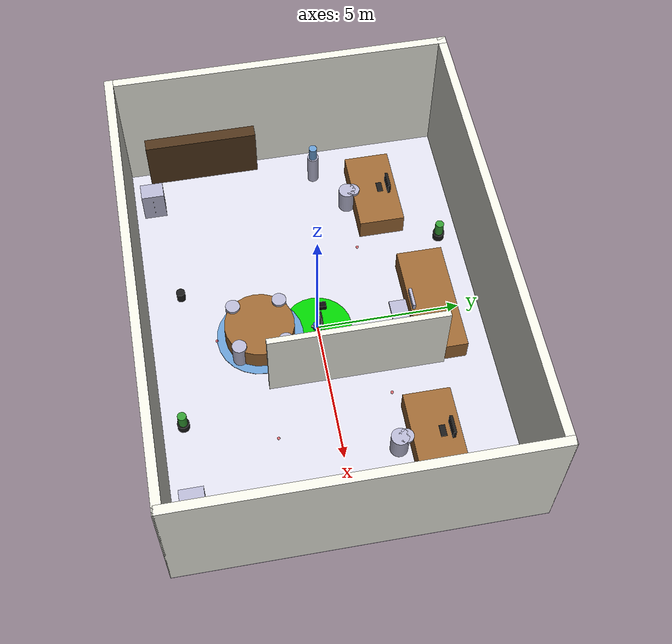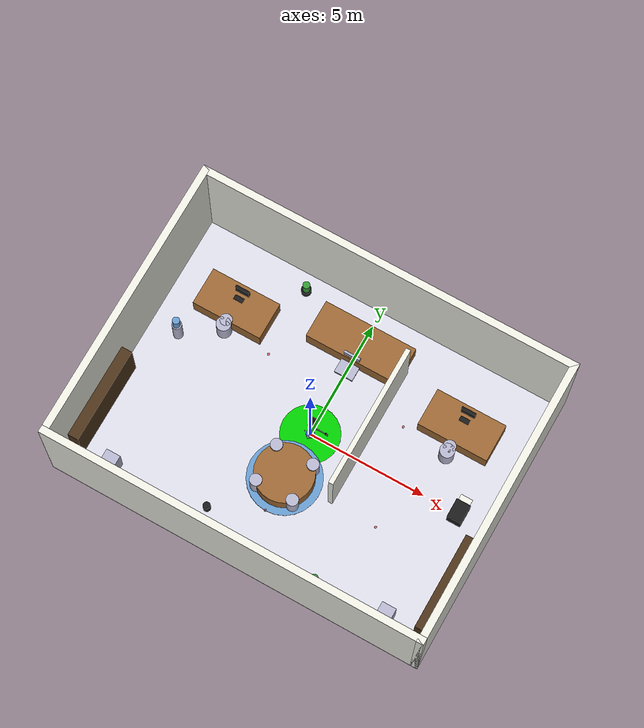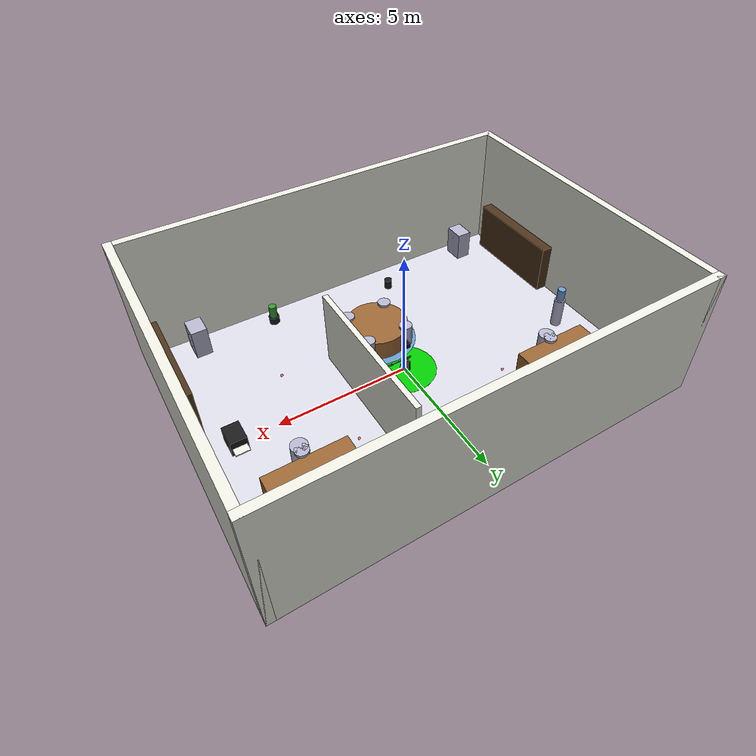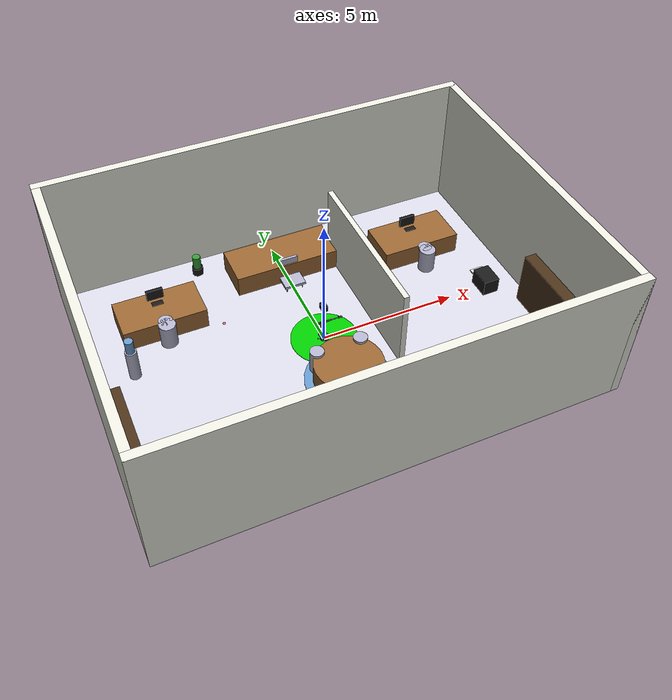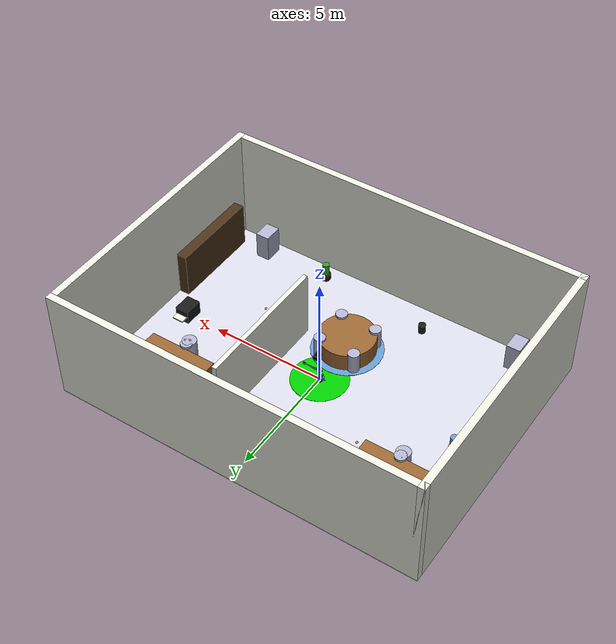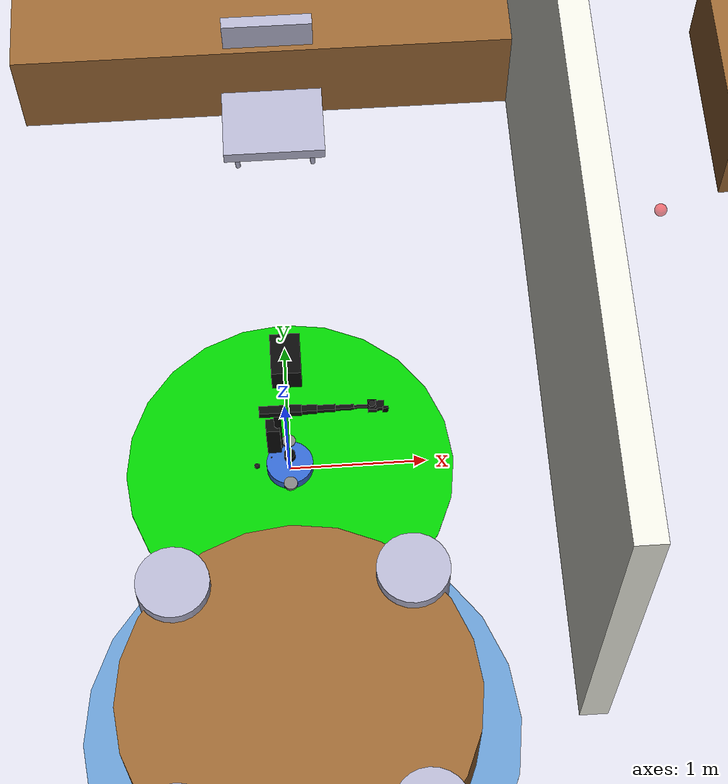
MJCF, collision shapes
<mujoco model="complex office with hybrid stretch robot">
  <!-- Include hybrid robot with simplified base -->
  <include file="stretch_hybrid_simple.xml"/>

  <statistic center="0 0 .75" extent="12" meansize="0.05"/>

  <visual>
    <headlight diffuse="0.6 0.6 0.6" ambient="0.3 0.3 0.3" specular="0 0 0"/>
    <rgba haze="0.15 0.25 0.35 1"/>
    <global azimuth="-120" elevation="-20"/>
  </visual>

  <asset>
    <!-- Office environment materials -->
    <material name="office_floor" rgba=".85 0.85 0.9 1" reflectance="0.2"/>
    <material name="office_wall" rgba=".92 0.92 0.88 1" reflectance="0.1"/>
    <material name="wood_desk" rgba=".6 0.4 0.2 1" reflectance="0.1"/>
    <material name="metal_chair" rgba=".7 0.7 0.8 1" reflectance="0.3"/>
    <material name="carpet" rgba=".4 0.6 0.8 0.5" reflectance="0.0"/>
    <material name="bookshelf" rgba=".3 0.2 0.1 1" reflectance="0.05"/>
    <material name="computer" rgba=".1 0.1 0.1 1" reflectance="0.05"/>
    <material name="plant" rgba=".2 0.6 0.2 1" reflectance="0.0"/>
    <texture type="skybox" builtin="gradient" rgb1="0.44 0.80 1.00" rgb2="1 1 1" width="512" height="3072"/>
  </asset>

  <worldbody>
    <!-- Enhanced lighting for office environment -->
    <light pos="0 0 4" dir="0 0 -1" directional="true" diffuse="0.8 0.8 0.8"/>
    <light pos="4 4 3" dir="-1 -1 -1" diffuse="0.4 0.4 0.5"/>
    <light pos="-4 -4 3" dir="1 1 -1" diffuse="0.4 0.4 0.5"/>
    <light pos="2 -3 2.5" dir="0 1 -1" diffuse="0.3 0.3 0.4"/>

    <!-- Large office floor -->
    <geom name="office_floor" size="8 6 0.05" type="plane" material="office_floor"/>

    <!-- Office walls creating realistic environment -->
    <geom name="wall_north" type="box" size="8 0.15 2.5" pos="0 5.85 2.5" material="office_wall"/>
    <geom name="wall_south" type="box" size="8 0.15 2.5" pos="0 -5.85 2.5" material="office_wall"/>
    <geom name="wall_east" type="box" size="0.15 6 2.5" pos="7.85 0 2.5" material="office_wall"/>
    <geom name="wall_west" type="box" size="0.15 6 2.5" pos="-7.85 0 2.5" material="office_wall"/>

    <!-- Room divider (creates realistic office layout) -->
    <geom name="divider_wall" type="box" size="0.1 3 1.5" pos="2 1 1.5" material="office_wall"/>

    <!-- Office furniture - strategically placed for navigation testing -->

    <!-- Reception area (front of office) -->
    <body name="reception_desk" pos="0 4 0.4">
      <geom type="box" size="2.0 0.8 0.4" material="wood_desk"/>
      <geom name="desk_leg1" type="cylinder" size="0.05 0.4" pos="1.5 0.5 -0.4" material="metal_chair"/>
      <geom name="desk_leg2" type="cylinder" size="0.05 0.4" pos="1.5 -0.5 -0.4" material="metal_chair"/>
      <geom name="desk_leg3" type="cylinder" size="0.05 0.4" pos="-1.5 0.5 -0.4" material="metal_chair"/>
      <geom name="desk_leg4" type="cylinder" size="0.05 0.4" pos="-1.5 -0.5 -0.4" material="metal_chair"/>
    </body>

    <body name="reception_chair" pos="0 3 0.25">
      <geom type="box" size="0.4 0.4 0.05" material="metal_chair"/>
      <geom name="chair_back" type="box" size="0.35 0.05 0.4" pos="0 0.3 0.4" material="metal_chair"/>
      <geom name="chair_leg1" type="cylinder" size="0.02 0.25" pos="0.3 0.3 -0.25" material="metal_chair"/>
      <geom name="chair_leg2" type="cylinder" size="0.02 0.25" pos="0.3 -0.3 -0.25" material="metal_chair"/>
      <geom name="chair_leg3" type="cylinder" size="0.02 0.25" pos="-0.3 0.3 -0.25" material="metal_chair"/>
      <geom name="chair_leg4" type="cylinder" size="0.02 0.25" pos="-0.3 -0.3 -0.25" material="metal_chair"/>
    </body>

    <!-- Work area 1 (left side) -->
    <body name="work_desk1" pos="-5 3 0.4">
      <geom type="box" size="1.5 0.8 0.4" material="wood_desk"/>
      <!-- Computer setup -->
      <geom name="monitor1" type="box" size="0.3 0.05 0.2" pos="0 0.5 0.6" material="computer"/>
      <geom name="keyboard1" type="box" size="0.2 0.1 0.01" pos="0 0.2 0.42" material="computer"/>
    </body>

    <body name="work_chair1" pos="-5 2 0.45">
      <geom type="cylinder" size="0.3 0.45" material="metal_chair"/>
      <geom name="chair1_back" type="cylinder" size="0.25 0.05" pos="0 0.2 0.4" material="metal_chair"/>
    </body>

    <!-- Work area 2 (right side) -->
    <body name="work_desk2" pos="5 3 0.4">
      <geom type="box" size="1.5 0.8 0.4" material="wood_desk"/>
      <!-- Computer setup -->
      <geom name="monitor2" type="box" size="0.3 0.05 0.2" pos="0 0.5 0.6" material="computer"/>
      <geom name="keyboard2" type="box" size="0.2 0.1 0.01" pos="0 0.2 0.42" material="computer"/>
    </body>

    <body name="work_chair2" pos="5 1.8 0.45">
      <geom type="cylinder" size="0.3 0.45" material="metal_chair"/>
      <geom name="chair2_back" type="cylinder" size="0.25 0.05" pos="0 0.2 0.4" material="metal_chair"/>
    </body>

    <!-- Meeting table (center-back) -->
    <body name="meeting_table" pos="0 -2 0.4">
      <geom type="cylinder" size="1.2 0.4" material="wood_desk"/>
      <geom name="table_base" type="cylinder" size="0.1 0.4" pos="0 0 -0.4" material="metal_chair"/>
    </body>

    <!-- Meeting chairs around table -->
    <body name="meeting_chair1" pos="0.8 -1.2 0.45">
      <geom type="cylinder" size="0.25 0.45" material="metal_chair"/>
    </body>
    <body name="meeting_chair2" pos="-0.8 -1.2 0.45">
      <geom type="cylinder" size="0.25 0.45" material="metal_chair"/>
    </body>
    <body name="meeting_chair3" pos="0.8 -2.8 0.45">
      <geom type="cylinder" size="0.25 0.45" material="metal_chair"/>
    </body>
    <body name="meeting_chair4" pos="-0.8 -2.8 0.45">
      <geom type="cylinder" size="0.25 0.45" material="metal_chair"/>
    </body>

    <!-- Bookshelves along walls -->
    <body name="bookshelf1" pos="-7.5 -3 1.0">
      <geom type="box" size="0.25 2.0 1.0" material="bookshelf"/>
      <!-- Books simulation -->
      <geom name="books1" type="box" size="0.2 1.8 0.05" pos="0 0 0.5" material="computer"/>
      <geom name="books2" type="box" size="0.2 1.8 0.05" pos="0 0 0.0" material="computer"/>
      <geom name="books3" type="box" size="0.2 1.8 0.05" pos="0 0 -0.5" material="computer"/>
    </body>

    <body name="bookshelf2" pos="7.5 -3 1.0">
      <geom type="box" size="0.25 2.0 1.0" material="bookshelf"/>
      <geom name="books4" type="box" size="0.2 1.8 0.05" pos="0 0 0.5" material="computer"/>
      <geom name="books5" type="box" size="0.2 1.8 0.05" pos="0 0 0.0" material="computer"/>
      <geom name="books6" type="box" size="0.2 1.8 0.05" pos="0 0 -0.5" material="computer"/>
    </body>

    <!-- Filing cabinets -->
    <body name="filing_cabinet1" pos="-6 -5 0.6">
      <geom type="box" size="0.3 0.4 0.6" material="metal_chair"/>
      <!-- Drawer handles -->
      <geom name="handle1" type="cylinder" size="0.01 0.05" pos="0.28 0 0.3" euler="0 1.57 0" material="computer"/>
      <geom name="handle2" type="cylinder" size="0.01 0.05" pos="0.28 0 0" euler="0 1.57 0" material="computer"/>
      <geom name="handle3" type="cylinder" size="0.01 0.05" pos="0.28 0 -0.3" euler="0 1.57 0" material="computer"/>
    </body>

    <body name="filing_cabinet2" pos="6 -5 0.6">
      <geom type="box" size="0.3 0.4 0.6" material="metal_chair"/>
      <geom name="handle4" type="cylinder" size="0.01 0.05" pos="0.28 0 0.3" euler="0 1.57 0" material="computer"/>
      <geom name="handle5" type="cylinder" size="0.01 0.05" pos="0.28 0 0" euler="0 1.57 0" material="computer"/>
      <geom name="handle6" type="cylinder" size="0.01 0.05" pos="0.28 0 -0.3" euler="0 1.57 0" material="computer"/>
    </body>

    <!-- Plants for realism -->
    <body name="plant1" pos="-3 5 0.4">
      <geom type="cylinder" size="0.15 0.4" material="plant"/>
      <geom name="pot1" type="cylinder" size="0.2 0.15" pos="0 0 -0.25" material="computer"/>
    </body>

    <body name="plant2" pos="3 -5 0.4">
      <geom type="cylinder" size="0.15 0.4" material="plant"/>
      <geom name="pot2" type="cylinder" size="0.2 0.15" pos="0 0 -0.25" material="computer"/>
    </body>

    <!-- Office equipment -->
    <body name="printer" pos="6.5 0 0.3">
      <geom type="box" size="0.3 0.4 0.3" material="computer"/>
      <geom name="printer_tray" type="box" size="0.25 0.35 0.02" pos="0 0.35 0" material="office_wall"/>
    </body>

    <!-- Water cooler -->
    <body name="water_cooler" pos="-6.5 1 0.6">
      <geom type="cylinder" size="0.2 0.6" material="metal_chair"/>
      <geom name="water_bottle" type="cylinder" size="0.15 0.3" pos="0 0 0.8" material="carpet"/>
    </body>

    <!-- Trash bins -->
    <body name="trash1" pos="1 4.5 0.2">
      <geom type="cylinder" size="0.15 0.2" material="computer"/>
    </body>
    <body name="trash2" pos="-2 -4.5 0.2">
      <geom type="cylinder" size="0.15 0.2" material="computer"/>
    </body>

    <!-- Area rug for visual reference -->
    <geom name="office_rug" type="cylinder" size="1.5 0.01" pos="0 -2 0.01" material="carpet"/>

    <!-- Robot starting area marker (clear navigation space) -->
    <body name="robot_start_zone" pos="0 0 0.01">
      <geom type="cylinder" size="1.2 0.005" rgba="0 0.8 0 0.3"/>
    </body>

    <!-- Navigation waypoints (invisible markers for testing) -->
    <site name="waypoint_1" pos="3 2 0.1" size="0.05" rgba="1 0 0 0.5"/>
    <site name="waypoint_2" pos="-3 2 0.1" size="0.05" rgba="1 0 0 0.5"/>
    <site name="waypoint_3" pos="0 -3.5 0.1" size="0.05" rgba="1 0 0 0.5"/>
    <site name="waypoint_4" pos="4 -2 0.1" size="0.05" rgba="1 0 0 0.5"/>
  </worldbody>
</mujoco>

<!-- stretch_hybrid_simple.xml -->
<mujoco model="stretch_hybrid_simple">
  <!-- Hybrid model: Simplified cylindrical base + Original upper components -->
  <compiler angle="radian" assetdir="/home/user/stretch_mujoco/stretch_mujoco/models/assets"/>

  <!-- Optimized physics settings for better performance -->
  <option timestep="0.015" gravity="0 0 -9.81" iterations="25" solver="PGS" integrator="implicitfast" impratio="15">
    <flag multiccd="enable"/>
  </option>
  <size njmax="3000" nconmax="3000" />

  <default>
    <default class="stretch">
      <geom mass="0" solref="0.01 1"/>
      <general biastype="affine"/>
      <default class="wheel">
        <joint axis="0 0 1" damping="0.1" frictionloss="35" armature="0.1" stiffness="0.01"/>
        <velocity gear="3" kv="20" ctrlrange="-6 6"/>
      </default>
      <default class="lift">
        <joint type="slide" axis="0 0 1" damping="35" stiffness="0.03" armature="0.01" range="0.0 1.1" frictionloss="1.5"/>
        <general ctrlrange="0.0 1.1" gainprm="400" biasprm="0 -200 -100" forcerange="-70 70"/>
      </default>
      <default class="telescope">
        <joint type="slide" axis="0 0 1" damping="50" stiffness="0.02" armature="0.01" range="0 0.13" frictionloss="1.5"/>
        <general ctrlrange="0 0.52" gainprm="150" biasprm="0 -100 -10" forcerange="-56 56"/>
      </default>
      <default class="head">
        <joint axis="0 0 1" damping="1"/>
        <position kp="10"/>
        <default class="head_pan">
          <joint range="-4.04 1.73"/>
          <position ctrlrange="-4.04 1.73"/>
        </default>
        <default class="head_tilt">
          <joint range="-1.53 0.79"/>
          <position ctrlrange="-1.53 0.79"/>
        </default>
      </default>
      <default class="wrist">
        <joint axis="0 0 1" damping="1"/>
        <position kp="10"/>
        <default class="wrist_yaw">
          <joint axis="0 0 -1" range="-1.39 4.42" armature="0.01" damping="7" frictionloss=".1"/>
          <position ctrlrange="-1.39 4.42" kp="20"/>
        </default>
        <default class="wrist_pitch">
          <joint axis="0 0 1" range="-1.57 0.56" armature="0.01" frictionloss=".1"/>
          <position ctrlrange="-1.57 0.56" kp="50"/>
        </default>
        <default class="wrist_roll">
          <joint axis="0 0 1" range="-3.14 3.14" armature="0.01" frictionloss=".1"/>
          <position ctrlrange="-3.14 3.14" kp="20"/>
        </default>
        <default class="finger_open">
          <joint axis="0 -1 0" range="-0.6 0.6" damping="0.0001" armature="0.01" frictionloss=".1"/>
          <position ctrlrange="-0.6 0.6" kp="4000" kv="124"/>
        </default>
        <default class="finger_slide">
          <joint type="slide" axis="0 0 1" range="-0.02 .04" armature="0.1" damping="0.0001"/>
          <position ctrlrange="-0.02 .04" kp="4000" kv="124"/>
        </default>
      </default>
      <default class="visual">
        <geom group="2" type="mesh" contype="0" conaffinity="0"/>
      </default>
      <default class="collision">
        <geom group="3" type="mesh"/>
        <default class="caster">
          <geom type="sphere" size=".02" pos="-0.24 0 .02" condim="1" priority="1"/>
        </default>
        <default class="rubber">
          <geom condim="6" friction="2 0.02 0.1" priority="1" solref="0.02 1" solimp="0.99 0.99 0.01" conaffinity="1"/>
        </default>
      </default>
    </default>
  </default>

  <asset>
    <!-- Materials for simplified base -->
    <material name="base_blue" rgba="0.2 0.4 0.8 1"/>
    <material name="base_gray" rgba="0.5 0.5 0.5 1"/>
    <material name="wheel_black" rgba="0.1 0.1 0.1 1"/>

    <!-- Original robot materials (subset needed) -->
    <material name="Generic_Black" rgba="0.036889 0.036889 0.036889 1"/>
    <material name="3D_Print_Black" rgba="0.114435 0.114435 0.114435 1"/>
    <material name="Pantone_Black_6_U" rgba="0.072272 0.076185 0.093059 1"/>
    <material name="Pure_Black" rgba="0 0 0 1"/>
    <material name="Gray_Lens" rgba="0.3 0.3 0.3 1" reflectance="0.3"/>
    <material name="Servo_Blue" rgba="0.0823 0.4392 0.7137 1"/>
    <material name="Stepper_Black" rgba="0.0823 0.0823 0.0823 1"/>

    <!-- Original robot meshes for upper components -->
    <mesh name="link_mast" file="link_mast.obj"/>
    <mesh name="link_lift_0" file="link_lift_0.obj"/>
    <mesh name="link_lift_8" file="link_lift_8.obj"/>
    <mesh name="link_lift_9" file="link_lift_9.obj"/>

    <!-- Head meshes -->
    <mesh name="link_head_0" file="link_head_0.obj"/>
    <mesh name="link_head_1" file="link_head_1.obj"/>
    <mesh name="link_head_2" file="link_head_2.obj"/>
    <mesh name="link_head_3" file="link_head_3.obj"/>
    <mesh name="link_head_4" file="link_head_4.obj"/>
    <mesh name="link_head_5" file="link_head_5.obj"/>
    <mesh name="link_head_6" file="link_head_6.obj"/>
    <mesh name="link_head_7" file="link_head_7.obj"/>
    <mesh name="link_head_8" file="link_head_8.obj"/>
    <mesh name="link_head_9" file="link_head_9.obj"/>
    <mesh name="link_head_10" file="link_head_10.obj"/>
    <mesh name="link_head_11" file="link_head_11.obj"/>

    <!-- Arm meshes -->
    <mesh name="link_arm_l0_0" file="link_arm_l0_0.obj"/>
    <mesh name="link_arm_l0_1" file="link_arm_l0_1.obj"/>
    <mesh name="link_arm_l0_2" file="link_arm_l0_2.obj"/>
    <mesh name="link_arm_l1_0" file="link_arm_l1_0.obj"/>
    <mesh name="link_arm_l1_1" file="link_arm_l1_1.obj"/>
    <mesh name="link_arm_l2_0" file="link_arm_l2_0.obj"/>
    <mesh name="link_arm_l2_1" file="link_arm_l2_1.obj"/>
    <mesh name="link_arm_l3_0" file="link_arm_l3_0.obj"/>
    <mesh name="link_arm_l3_1" file="link_arm_l3_1.obj"/>
    <mesh name="link_arm_l4_0" file="link_arm_l4_0.obj"/>
    <mesh name="link_arm_l4_1" file="link_arm_l4_1.obj"/>

    <!-- Wrist and gripper meshes -->
    <mesh name="link_wrist_yaw" file="link_wrist_yaw.obj"/>
    <mesh name="link_DW3_wrist_pitch" file="link_DW3_wrist_pitch.stl"/>
    <mesh name="link_DW3_wrist_roll" file="link_DW3_wrist_roll.stl"/>
    <mesh name="link_SG3_gripper_body" file="link_SG3_gripper_body.obj"/>
    <mesh name="link_gripper_0" file="link_gripper_0.obj"/>
    <mesh name="link_gripper_1" file="link_gripper_1.obj"/>

    <!-- Wheel meshes -->
    <mesh name="link_left_wheel_0" file="link_left_wheel_0.obj"/>
    <mesh name="link_left_wheel_1" file="link_left_wheel_1.obj"/>
    <mesh name="link_right_wheel_0" file="link_right_wheel_0.obj"/>
    <mesh name="link_right_wheel_1" file="link_right_wheel_1.obj"/>

    <!-- LiDAR mesh -->
    <mesh name="laser" file="laser.obj"/>
  </asset>

  <worldbody>
    <light name="spotlight" mode="targetbodycom" target="base_link" pos="0 -1 2"/>

    <!-- SIMPLIFIED MOBILE BASE - Single cylinder replacing all base meshes -->
    <body name="base_link" pos="0 0 0.051">
      <!-- Simplified base visual - single blue cylinder -->
      <geom name="base_cylinder_visual" type="cylinder" size="0.17 0.051"
            material="base_blue" group="2" mass="0"/>

      <!-- Simplified base collision - cylinder with realistic mass -->
      <geom name="base_cylinder_collision" type="cylinder" size="0.17 0.051"
            material="base_gray" group="3" mass="25.0"/>

      <!-- Caster sphere (keep original) -->
      <geom name="caster" class="caster" material="wheel_black"/>

      <!-- Base joints for mobility -->
      <joint name="base_x" type="slide" axis="1 0 0" damping="10" range="-100 100"/>
      <joint name="base_y" type="slide" axis="0 1 0" damping="10" range="-100 100"/>
      <joint name="base_theta" type="hinge" axis="0 0 1" damping="5" range="-6.28 6.28"/>

      <!-- WHEELS (Keep original specifications and meshes) -->
      <body name="link_left_wheel" pos="0 0.17035 0.0508">
        <joint name="joint_left_wheel" class="wheel"/>
        <geom name="link_left_wheel_0_visual" class="visual" mesh="link_left_wheel_0" material="wheel_black"/>
        <geom name="link_left_wheel_1_visual" class="visual" mesh="link_left_wheel_1" material="Generic_Black"/>
        <geom name="link_left_wheel_collision" class="rubber" type="cylinder" size="0.05 0.0125" mass="0.15"/>
      </body>

      <body name="link_right_wheel" pos="0 -0.17035 0.0508">
        <joint name="joint_right_wheel" class="wheel"/>
        <geom name="link_right_wheel_0_visual" class="visual" mesh="link_right_wheel_0" material="wheel_black"/>
        <geom name="link_right_wheel_1_visual" class="visual" mesh="link_right_wheel_1" material="Generic_Black"/>
        <geom name="link_right_wheel_collision" class="rubber" type="cylinder" size="0.05 0.0125" mass="0.15"/>
      </body>

      <!-- LIDAR (Keep exact original position and specs) -->
      <body name="laser" pos="0.004 0 0.1664" quat="0 0 0 1">
        <geom name="laser_visual" class="visual" mesh="laser" material="Pure_Black"/>
        <geom name="laser_collision" type="cylinder" size="0.04 0.03" material="Pure_Black" group="3" mass="0.2"/>
        <site name="base_lidar" pos="0 0 0" size="0.01"/>
      </body>

      <!-- IMU (Keep exact original position) -->
      <site name="base_imu" pos="-0.12838 0.0031592 0.1474" euler="-3.1416 0 1.5708"/>

      <!-- MAST (Keep original - connects base to upper robot) -->
      <body name="link_mast" pos="-0.067 0.135 0.0284">
        <geom name="link_mast_visual" class="visual" mesh="link_mast" material="Generic_Black"/>
        <geom name="link_mast_collision" type="cylinder" size="0.025 0.6" material="Generic_Black" group="3" mass="1.8285"/>

        <!-- LIFT SYSTEM (Keep all original components) -->
        <body name="link_lift" pos="-0.037385 -0.000001 0.17159">
          <joint name="joint_lift" class="lift"/>
          <geom name="link_lift_0_visual" class="visual" mesh="link_lift_0" material="Generic_Black"/>
          <geom name="link_lift_8_visual" class="visual" mesh="link_lift_8" material="Stepper_Black"/>
          <geom name="link_lift_9_visual" class="visual" mesh="link_lift_9" material="Generic_Black"/>
          <geom name="link_lift_collision" type="box" size="0.05 0.05 0.2" material="Generic_Black" group="3" mass="3.0"/>

          <!-- HEAD ASSEMBLY (Keep all original components) -->
          <body name="link_head_pan" pos="0.13395 -0.000005 1.1568">
            <joint name="joint_head_pan" class="head_pan"/>
            <geom name="head_pan_collision" type="cylinder" size="0.03 0.02" material="Generic_Black" group="3" mass="0.2"/>

            <body name="link_head_tilt" pos="0 0 0">
              <joint name="joint_head_tilt" class="head_tilt"/>
              <geom name="head_tilt_collision" type="box" size="0.05 0.05 0.02" material="Generic_Black" group="3" mass="0.15"/>

              <!-- Head visual components (keep original) -->
              <geom name="link_head_0_visual" class="visual" mesh="link_head_0" material="Generic_Black"/>
              <geom name="link_head_1_visual" class="visual" mesh="link_head_1" material="3D_Print_Black"/>
              <geom name="link_head_2_visual" class="visual" mesh="link_head_2" material="Pantone_Black_6_U"/>
              <geom name="link_head_3_visual" class="visual" mesh="link_head_3" material="3D_Print_Black"/>
              <geom name="link_head_4_visual" class="visual" mesh="link_head_4" material="Generic_Black"/>
              <geom name="link_head_5_visual" class="visual" mesh="link_head_5" material="Pure_Black"/>
              <geom name="link_head_6_visual" class="visual" mesh="link_head_6" material="Gray_Lens"/>
              <geom name="link_head_7_visual" class="visual" mesh="link_head_7" material="Pure_Black"/>
              <geom name="link_head_8_visual" class="visual" mesh="link_head_8" material="Generic_Black"/>
              <geom name="link_head_9_visual" class="visual" mesh="link_head_9" material="Pure_Black"/>
              <geom name="link_head_10_visual" class="visual" mesh="link_head_10" material="Generic_Black"/>
              <geom name="link_head_11_visual" class="visual" mesh="link_head_11" material="3D_Print_Black"/>

              <!-- Head collision -->
              <geom name="link_head_collision" type="box" size="0.1 0.15 0.1" material="Generic_Black" group="3" mass="0.833027"/>

              <!-- D435i Camera Assembly (Keep exact original position) -->
              <body name="realsense" pos="0.0406 0.0053 0.0307" euler="0 0 0">
                <geom name="d435i_housing" type="box" size="0.012 0.045 0.01" material="Pure_Black" group="2" mass="0"/>
                <camera name="d435i_camera_rgb" pos="0 0.015 0" euler="1.57 -1.57 0" fovy="42"/>
                <camera name="d435i_camera_depth" pos="0 0.015 0" euler="1.57 -1.57 0" fovy="42"/>
              </body>

              <!-- Navigation Camera (Keep exact original position) -->
              <body name="link_SE3_head_nav_cam" pos="0.04 -0.0412 -0.0246" euler="0 1.5707963 0">
                <body name="head_nav_cam" pos="0 0 0">
                  <geom name="nav_cam_housing" type="box" size="0.01 0.03 0.008" material="Pure_Black" group="2" mass="0"/>
                  <camera name="nav_camera_rgb" pos="0 0 0" euler="-3.1415926 0 -1.5707963" fovy="69"/>
                </body>
              </body>
            </body>
          </body>

          <!-- ARM SYSTEM (Keep all original telescoping components) -->
          <body name="link_arm_l4" pos="0.06478 0.000003 0.41821" gravcomp="1">
            <joint name="joint_arm_l4" class="telescope"/>
            <geom name="link_arm_l4_0_visual" class="visual" mesh="link_arm_l4_0" material="Generic_Black"/>
            <geom name="link_arm_l4_1_visual" class="visual" mesh="link_arm_l4_1" material="Servo_Blue"/>
            <geom name="link_arm_l4_collision" type="box" size="0.15 0.03 0.03" material="Generic_Black" group="3" mass="0.2"/>

            <body name="link_arm_l3" pos="0.13 0 0" gravcomp="1">
              <joint name="joint_arm_l3" class="telescope"/>
              <geom name="link_arm_l3_0_visual" class="visual" mesh="link_arm_l3_0" material="Generic_Black"/>
              <geom name="link_arm_l3_1_visual" class="visual" mesh="link_arm_l3_1" material="Servo_Blue"/>
              <geom name="link_arm_l3_collision" type="box" size="0.13 0.025 0.025" material="Generic_Black" group="3" mass="0.18"/>

              <body name="link_arm_l2" pos="0.13 0 0" gravcomp="1">
                <joint name="joint_arm_l2" class="telescope"/>
                <geom name="link_arm_l2_0_visual" class="visual" mesh="link_arm_l2_0" material="Generic_Black"/>
                <geom name="link_arm_l2_1_visual" class="visual" mesh="link_arm_l2_1" material="Servo_Blue"/>
                <geom name="link_arm_l2_collision" type="box" size="0.13 0.02 0.02" material="Generic_Black" group="3" mass="0.16"/>

                <body name="link_arm_l1" pos="0.13 0 0" gravcomp="1">
                  <joint name="joint_arm_l1" class="telescope"/>
                  <geom name="link_arm_l1_0_visual" class="visual" mesh="link_arm_l1_0" material="Generic_Black"/>
                  <geom name="link_arm_l1_1_visual" class="visual" mesh="link_arm_l1_1" material="Servo_Blue"/>
                  <geom name="link_arm_l1_collision" type="box" size="0.13 0.015 0.015" material="Generic_Black" group="3" mass="0.15"/>

                  <body name="link_arm_l0" pos="0.13 0 0" gravcomp="1">
                    <joint name="joint_arm_l0" class="telescope"/>
                    <geom name="link_arm_l0_0_visual" class="visual" mesh="link_arm_l0_0" material="Generic_Black"/>
                    <geom name="link_arm_l0_1_visual" class="visual" mesh="link_arm_l0_1" material="Servo_Blue"/>
                    <geom name="link_arm_l0_2_visual" class="visual" mesh="link_arm_l0_2" material="3D_Print_Black"/>
                    <geom name="link_arm_l0_collision" type="box" size="0.13 0.01 0.01" material="Generic_Black" group="3" mass="0.3"/>

                    <!-- WRIST ASSEMBLY (Keep all original 3-DOF wrist) -->
                    <body name="link_wrist_yaw" pos="0.13 0 0">
                      <joint name="joint_wrist_yaw" class="wrist_yaw"/>
                      <geom name="link_wrist_yaw_visual" class="visual" mesh="link_wrist_yaw" material="Stepper_Black"/>
                      <geom name="link_wrist_yaw_collision" type="cylinder" size="0.025 0.04" material="Stepper_Black" group="3" mass="0.3"/>

                      <body name="link_DW3_wrist_pitch" pos="0 0 0">
                        <joint name="joint_wrist_pitch" class="wrist_pitch"/>
                        <geom name="link_DW3_wrist_pitch_visual" class="visual" mesh="link_DW3_wrist_pitch" material="Generic_Black"/>
                        <geom name="link_DW3_wrist_pitch_collision" type="box" size="0.03 0.04 0.02" material="Stepper_Black" group="3" mass="0.2"/>

                        <body name="link_wrist_roll" pos="0 0 0">
                          <joint name="joint_wrist_roll" class="wrist_roll"/>
                          <geom name="link_DW3_wrist_roll_visual" class="visual" mesh="link_DW3_wrist_roll" material="Stepper_Black"/>
                          <geom name="link_wrist_roll_collision" type="cylinder" size="0.015 0.03" material="Stepper_Black" group="3" mass="0.1"/>

                          <!-- GRIPPER ASSEMBLY (Keep original with D405 camera) -->
                          <body name="link_SG3_gripper_body" pos="0.043 0 0">
                            <joint name="joint_gripper_slide" class="finger_slide"/>
                            <geom name="link_SG3_gripper_body_visual" class="visual" mesh="link_SG3_gripper_body" material="Generic_Black"/>
                            <geom name="link_gripper_0_visual" class="visual" mesh="link_gripper_0" material="3D_Print_Black"/>
                            <geom name="link_gripper_1_visual" class="visual" mesh="link_gripper_1" material="Generic_Black"/>
                            <geom name="link_SG3_gripper_body_collision" type="box" size="0.04 0.03 0.02" material="Generic_Black" group="3" mass="0.2"/>

                            <!-- D405 Hand Camera (Keep exact original position) -->
                            <body name="aruco_d405" pos="0.05 0 0">
                              <body name="d405" pos="0 -0.03068 0" euler="1.57 0 0">
                                <body name="d405_cam" pos="0 0 0" euler="0 0 3.14">
                                  <geom name="d405_housing" type="box" size="0.02 0.03 0.008" material="Pure_Black" group="2" mass="0"/>
                                  <camera name="d405_rgb" pos="0 0 0" euler="-3.14 0 -3.14" fovy="58"/>
                                  <camera name="d405_depth" pos="0 0 0" euler="-3.14 0 -3.14" fovy="58"/>
                                </body>
                              </body>
                            </body>
                          </body>
                        </body>
                      </body>
                    </body>
                  </body>
                </body>
              </body>
            </body>
          </body>
        </body>
      </body>
    </body>
  </worldbody>

  <!-- SENSORS (Keep all original sensor definitions) -->
  <sensor>
    <!-- IMU Sensors -->
    <gyro name="base_gyro" site="base_imu"/>
    <accelerometer name="base_accel" site="base_imu"/>

    <!-- LIDAR Sensor -->
    <rangefinder name="base_lidar" site="base_lidar" cutoff="10.0"/>
  </sensor>

  <!-- ACTUATORS (Keep all original actuators) -->
  <actuator>
    <!-- Wheel actuators -->
    <velocity name="left_wheel" joint="joint_left_wheel" class="wheel"/>
    <velocity name="right_wheel" joint="joint_right_wheel" class="wheel"/>

    <!-- Lift actuator -->
    <general name="lift" joint="joint_lift" class="lift"/>

    <!-- Arm actuators -->
    <general name="arm_l4" joint="joint_arm_l4" class="telescope"/>
    <general name="arm_l3" joint="joint_arm_l3" class="telescope"/>
    <general name="arm_l2" joint="joint_arm_l2" class="telescope"/>
    <general name="arm_l1" joint="joint_arm_l1" class="telescope"/>
    <general name="arm_l0" joint="joint_arm_l0" class="telescope"/>

    <!-- Head actuators -->
    <position name="head_pan" joint="joint_head_pan" class="head_pan"/>
    <position name="head_tilt" joint="joint_head_tilt" class="head_tilt"/>

    <!-- Wrist actuators -->
    <position name="wrist_yaw" joint="joint_wrist_yaw" class="wrist_yaw"/>
    <position name="wrist_pitch" joint="joint_wrist_pitch" class="wrist_pitch"/>
    <position name="wrist_roll" joint="joint_wrist_roll" class="wrist_roll"/>

    <!-- Gripper actuator -->
    <position name="gripper" joint="joint_gripper_slide" class="finger_slide"/>
  </actuator>

</mujoco>
